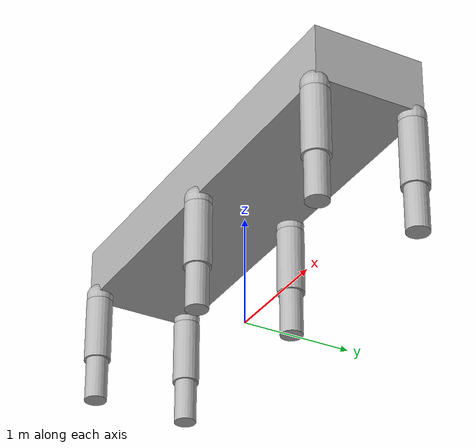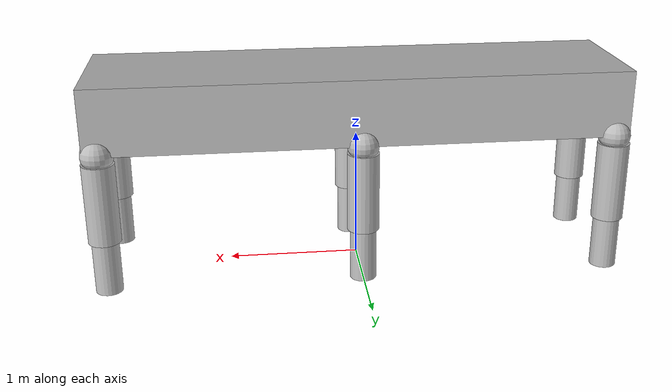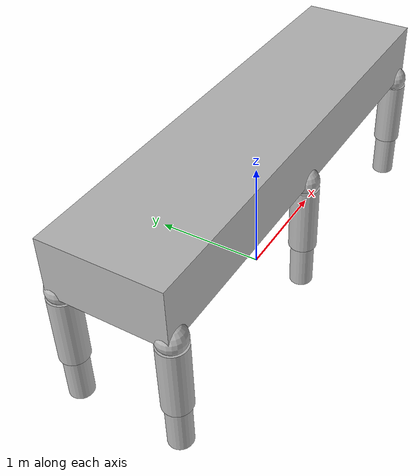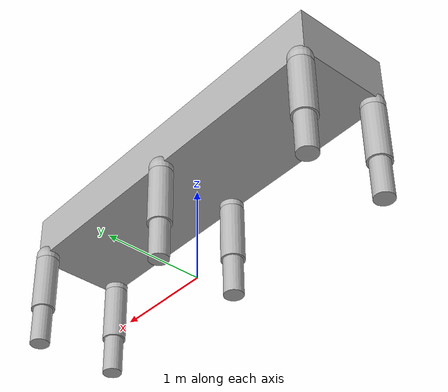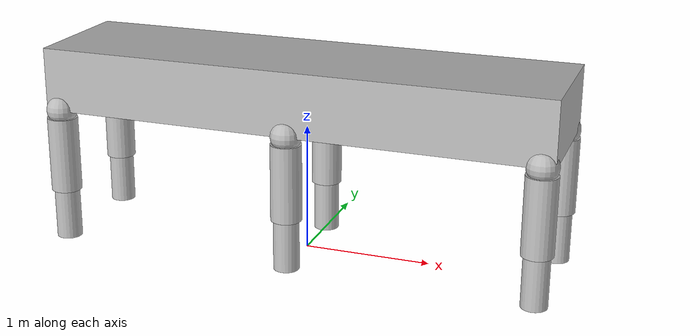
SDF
<?xml version='1.0'?>
<sdf version='1.4'>

  <model name="simplesix">
    <static>false</static>
    <self_collide>1</self_collide>

      <!-- Main Body -->
      <link name='body'>
        <pose>0 0 1.31 0 0 0</pose>
        <inertial>
          <mass>10</mass>
        </inertial>
        <collision name='collision'>
          <pose frame=''>0 0 0 0 0 0</pose>
          <geometry>
            <box>
              <size>4 1 .5</size>
            </box>
          </geometry>
        </collision>
          <visual name='visual'>
          <pose>0 0 0 0 0 0</pose>
          <geometry>
            <box>
              <size>4 1 .5</size>
            </box>
          </geometry>
        </visual>
      </link>

      <!-- front left leg -->

      <include>
        <uri>model://leg2</uri>
        <pose> 1.9 .45 0 0 0 0</pose>
        <name>fl_leg</name>
      </include>
      <joint name="body_to_fl_leg" type="revolute">
        <child>fl_leg::hip</child>
        <parent>body</parent>
        <axis>
          <xyz>0 1 0</xyz>
        </axis>
      </joint>

      <!-- front right leg -->
      <include>
        <uri>model://leg2</uri>
        <pose> 1.9 -.45 0 0 0 0</pose>
        <name>fr_leg</name>
      </include>
      <joint name="body_to_fr_leg" type="revolute">
        <child>fr_leg::hip</child>
        <parent>body</parent>
        <axis>
          <xyz>0 1 0</xyz>
        </axis>
      </joint>

       <!-- middle left leg -->
        <include>
        <uri>model://leg2</uri>
        <pose> 0 0.45 0 0 0 0</pose>
        <name>ml_leg</name>
      </include>
      <joint name="body_to_ml_leg" type="revolute">
        <child>ml_leg::r_thigh_lift</child>
        <parent>body</parent>
        <axis>
          <xyz>0 1 0</xyz>
        </axis>
      </joint>

      <!-- middle right leg -->
        <include>
        <uri>model://leg2</uri>
        <pose>0 -0.45 0 0 0 0</pose>
        <name>mr_leg</name>
      </include>
      <joint name="body_to_mr_leg" type="revolute">
        <child>mr_leg::r_thigh_lift</child>
        <parent>body</parent>
        <axis>
          <xyz>0 1 0</xyz>
        </axis>
      </joint>

      <!-- rear left leg -->
      <include>
        <uri>model://leg2</uri>
        <pose>-1.9 0.45 0 0 0 0</pose>
        <name>rl_leg</name>
      </include>
      <joint name="body_to_rl_leg" type="revolute">
        <child>rl_leg::hip</child>
        <parent>body</parent>
        <axis>
          <xyz>0 1 0</xyz>
        </axis>
      </joint>

      <!-- rear right leg -->
      <include>
        <uri>model://leg2</uri>
        <pose>-1.9 -0.45 0 0 0 0</pose>
        <name>rr_leg</name>
      </include>
      <joint name="body_to_rr_leg" type="revolute">
        <child>rr_leg::hip</child>
        <parent>body</parent>
        <axis>
          <xyz>0 1 0</xyz>
        </axis>
      </joint>
      <self_collide>1</self_collide>
    </model>
</sdf>

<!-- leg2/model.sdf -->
<sdf version='1.6'>
  <model name='leg1'>
    <link name='r_calf'>
      <pose frame=''>0 0 0.2 0 0 0</pose>
      <inertial>
        <mass>.25</mass>
      </inertial>
      <gravity>1</gravity>
      <self_collide>1</self_collide>
      <visual name='r_calf_geom_visual'>
        <pose frame=''>0 0 0 0 0 0</pose>
        <geometry>
          <cylinder>
            <radius>0.1</radius>
            <length>0.4 </length>
          </cylinder>
        </geometry>
      </visual>
      <collision name='r_calf_geom'>
        <pose frame=''>0 0 0 0 0 0</pose>
        <geometry>
          <cylinder>
            <radius>0.1</radius>
            <length>0.4</length>
          </cylinder>
        </geometry>
      </collision>
    </link>

    <link name='r_thigh_lift'>
      <pose frame=''>0 0 0.7 0 0 0</pose>
      <inertial>
        <mass>.54</mass>
      </inertial>
      <gravity>1</gravity>
      <self_collide>1</self_collide>

      <visual name='r_thigh_lift_geom_visual'>
        <pose frame=''>0 0 0 0 -0 0</pose>
        <geometry>
          <cylinder>
            <radius>0.12</radius>
            <length>0.6</length>
          </cylinder>
        </geometry>
      </visual>
      <collision name='r_thigh_lift_geom'>
        <pose frame=''>0 0 0 0 0 0</pose>
        <geometry>
          <cylinder>
            <radius>0.12</radius>
            <length>0.7</length>
          </cylinder>
        </geometry>
      </collision>
    </link>

    <link name='hip'>
      <pose frame=''>0 0 1.06 0 0 0</pose>
      <gravity>1</gravity>
      <self_collide>1</self_collide>
      <visual name='hip_geom_visual'>
        <pose frame=''>0 0 0 0 0 0</pose>
        <geometry>
          <sphere>
            <radius>0.12</radius>
          </sphere>
        </geometry>
      </visual>
      <collision name='hip_geom'>
        <pose frame=''>0 0 0 0 0 0</pose>
        <geometry>
          <sphere>
            <radius>0.06</radius>
          </sphere>
        </geometry>
      </collision>
    </link>

    <joint name='r_calf_joint' type='revolute'>
      <parent>r_thigh_lift</parent>
      <child>r_calf</child>
      <pose frame=''>0 0 0.2 0 0 0</pose>
      <axis>
        <xyz>0 1 0</xyz>
        <use_parent_model_frame>1</use_parent_model_frame>
        <limit>
          <lower>-1.5708</lower>
          <upper>1.5708</upper>
        </limit>
      </axis>
    </joint>

    <joint name='r_thigh_lift_joint' type='revolute'>
      <parent>hip</parent>
      <child>r_thigh_lift</child>
      <pose frame=''>0 0 0.3 0 0 0</pose>
      <axis>
        <xyz>0 1 0</xyz>
        <use_parent_model_frame>1</use_parent_model_frame>
        <limit>
          <lower>-1.5708</lower>
          <upper>1.5708</upper>
        </limit>
      </axis>
    </joint>

    <static>0</static>
    <allow_auto_disable>1</allow_auto_disable>

  </model>
</sdf>
